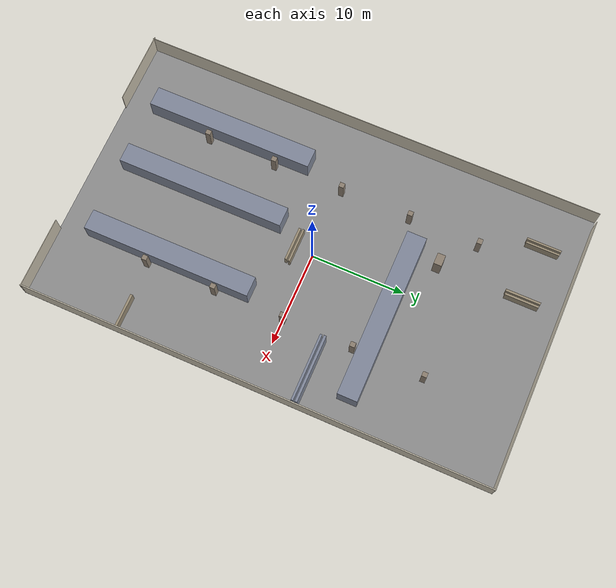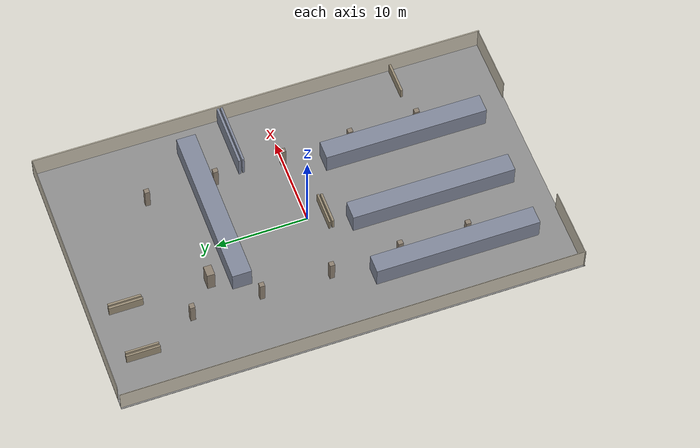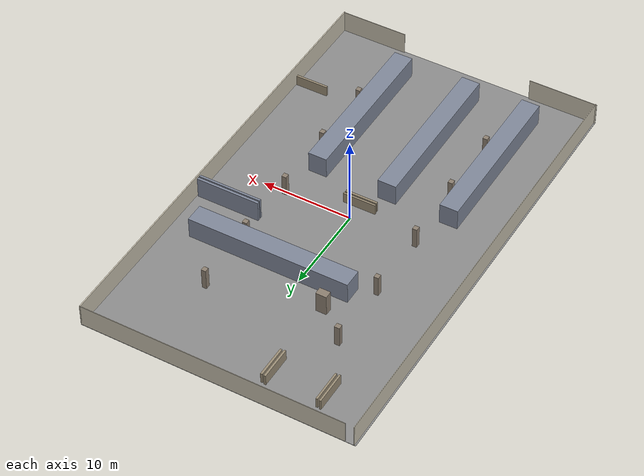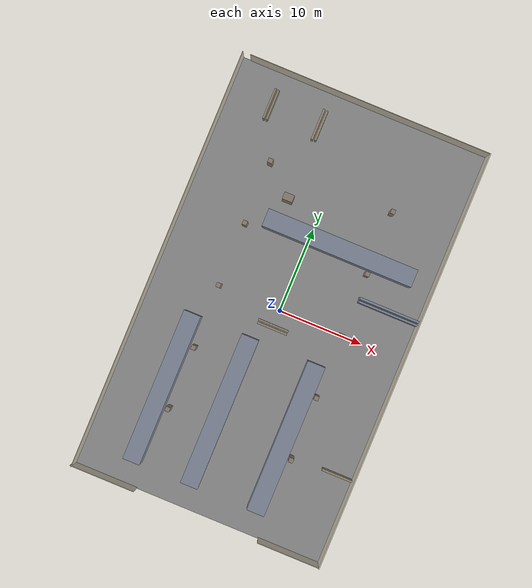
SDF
<?xml version="1.0"?>
<sdf version='1.7'>
  <world name='warehouse'>

    <physics name='default_physics' default='0' type='ode'>
      <max_step_size>0.002</max_step_size>
      <real_time_factor>1</real_time_factor>
      <real_time_update_rate>500</real_time_update_rate>
    </physics>

    <scene>
      <ambient>0.65 0.65 0.65 1</ambient>
      <background>0.7 0.8 0.9 1</background>
      <shadows>0</shadows>
    </scene>

    <light name='sun' type='directional'>
      <cast_shadows>0</cast_shadows>
      <pose>0 0 20 0 -0 0</pose>
      <diffuse>0.8 0.8 0.8 1</diffuse>
      <specular>0.2 0.2 0.2 1</specular>
      <direction>-0.5 0.1 -0.9</direction>
    </light>

    <model name='ground_plane'>
      <static>1</static>
      <pose>-0.010 0.110 -0.025 0 0 0</pose>
      <link name='link'>
        <collision name='collision'>
          <geometry><box><size>30.180 50.220 0.050</size></box></geometry>
        </collision>
        <visual name='visual'>
          <geometry><box><size>30.180 50.220 0.050</size></box></geometry>
          <material><ambient>0.45 0.45 0.45 1</ambient><diffuse>0.55 0.55 0.55 1</diffuse></material>
        </visual>
      </link>
    </model>
    <model name='wall_west'>
      <static>1</static>
      <pose>-14.920 0.110 1.250 0 0 0</pose>
      <link name='link'>
        <collision name='collision'>
          <geometry><box><size>0.060 50.220 2.500</size></box></geometry>
        </collision>
        <visual name='visual'>
          <geometry><box><size>0.060 50.220 2.500</size></box></geometry>
          <material><ambient>0.75 0.72 0.65 1</ambient><diffuse>0.78 0.75 0.68 1</diffuse></material>
        </visual>
      </link>
    </model>
    <model name='wall_east'>
      <static>1</static>
      <pose>15.020 0.110 1.250 0 0 0</pose>
      <link name='link'>
        <collision name='collision'>
          <geometry><box><size>0.120 50.220 2.500</size></box></geometry>
        </collision>
        <visual name='visual'>
          <geometry><box><size>0.120 50.220 2.500</size></box></geometry>
          <material><ambient>0.75 0.72 0.65 1</ambient><diffuse>0.78 0.75 0.68 1</diffuse></material>
        </visual>
      </link>
    </model>
    <model name='wall_north'>
      <static>1</static>
      <pose>0.545 25.190 1.250 0 0 0</pose>
      <link name='link'>
        <collision name='collision'>
          <geometry><box><size>29.070 0.060 2.500</size></box></geometry>
        </collision>
        <visual name='visual'>
          <geometry><box><size>29.070 0.060 2.500</size></box></geometry>
          <material><ambient>0.75 0.72 0.65 1</ambient><diffuse>0.78 0.75 0.68 1</diffuse></material>
        </visual>
      </link>
    </model>
    <model name='wall_south_w'>
      <static>1</static>
      <pose>-11.230 -24.895 1.250 0 0 0</pose>
      <link name='link'>
        <collision name='collision'>
          <geometry><box><size>7.740 0.060 2.500</size></box></geometry>
        </collision>
        <visual name='visual'>
          <geometry><box><size>7.740 0.060 2.500</size></box></geometry>
          <material><ambient>0.75 0.72 0.65 1</ambient><diffuse>0.78 0.75 0.68 1</diffuse></material>
        </visual>
      </link>
    </model>
    <model name='wall_south_e'>
      <static>1</static>
      <pose>11.315 -24.895 1.250 0 0 0</pose>
      <link name='link'>
        <collision name='collision'>
          <geometry><box><size>7.530 0.060 2.500</size></box></geometry>
        </collision>
        <visual name='visual'>
          <geometry><box><size>7.530 0.060 2.500</size></box></geometry>
          <material><ambient>0.75 0.72 0.65 1</ambient><diffuse>0.78 0.75 0.68 1</diffuse></material>
        </visual>
      </link>
    </model>
    <model name='shelf_01'>
      <static>1</static>
      <pose>3.500 9.080 1.200 0 0 0</pose>
      <link name='link'>
        <collision name='collision'>
          <geometry><box><size>18.060 2.100 2.400</size></box></geometry>
        </collision>
        <visual name='visual'>
          <geometry><box><size>18.060 2.100 2.400</size></box></geometry>
          <material><ambient>0.45 0.48 0.55 1</ambient><diffuse>0.50 0.53 0.60 1</diffuse></material>
        </visual>
      </link>
    </model>
    <model name='shelf_02'>
      <static>1</static>
      <pose>6.080 -12.940 1.200 0 0 0</pose>
      <link name='link'>
        <collision name='collision'>
          <geometry><box><size>2.100 18.000 2.400</size></box></geometry>
        </collision>
        <visual name='visual'>
          <geometry><box><size>2.100 18.000 2.400</size></box></geometry>
          <material><ambient>0.45 0.48 0.55 1</ambient><diffuse>0.50 0.53 0.60 1</diffuse></material>
        </visual>
      </link>
    </model>
    <model name='shelf_03'>
      <static>1</static>
      <pose>-1.945 -12.970 1.200 0 0 0</pose>
      <link name='link'>
        <collision name='collision'>
          <geometry><box><size>2.070 18.000 2.400</size></box></geometry>
        </collision>
        <visual name='visual'>
          <geometry><box><size>2.070 18.000 2.400</size></box></geometry>
          <material><ambient>0.45 0.48 0.55 1</ambient><diffuse>0.50 0.53 0.60 1</diffuse></material>
        </visual>
      </link>
    </model>
    <model name='shelf_04'>
      <static>1</static>
      <pose>-8.950 -12.955 1.200 0 0 0</pose>
      <link name='link'>
        <collision name='collision'>
          <geometry><box><size>2.040 17.970 2.400</size></box></geometry>
        </collision>
        <visual name='visual'>
          <geometry><box><size>2.040 17.970 2.400</size></box></geometry>
          <material><ambient>0.45 0.48 0.55 1</ambient><diffuse>0.50 0.53 0.60 1</diffuse></material>
        </visual>
      </link>
    </model>
    <model name='shelf_05'>
      <static>1</static>
      <pose>11.285 4.745 1.200 0 0 0</pose>
      <link name='link'>
        <collision name='collision'>
          <geometry><box><size>7.110 0.270 2.400</size></box></geometry>
        </collision>
        <visual name='visual'>
          <geometry><box><size>7.110 0.270 2.400</size></box></geometry>
          <material><ambient>0.45 0.48 0.55 1</ambient><diffuse>0.50 0.53 0.60 1</diffuse></material>
        </visual>
      </link>
    </model>
    <model name='shelf_06'>
      <static>1</static>
      <pose>11.300 4.340 1.200 0 0 0</pose>
      <link name='link'>
        <collision name='collision'>
          <geometry><box><size>7.080 0.240 2.400</size></box></geometry>
        </collision>
        <visual name='visual'>
          <geometry><box><size>7.080 0.240 2.400</size></box></geometry>
          <material><ambient>0.45 0.48 0.55 1</ambient><diffuse>0.50 0.53 0.60 1</diffuse></material>
        </visual>
      </link>
    </model>
    <model name='post_07'>
      <static>1</static>
      <pose>-4.000 12.110 1.200 0 0 0</pose>
      <link name='link'>
        <collision name='collision'>
          <geometry><box><size>1.200 0.840 2.400</size></box></geometry>
        </collision>
        <visual name='visual'>
          <geometry><box><size>1.200 0.840 2.400</size></box></geometry>
          <material><ambient>0.50 0.45 0.40 1</ambient><diffuse>0.55 0.50 0.44 1</diffuse></material>
        </visual>
      </link>
    </model>
    <model name='rail_08'>
      <static>1</static>
      <pose>-4.090 21.155 0.600 0 0 0</pose>
      <link name='link'>
        <collision name='collision'>
          <geometry><box><size>0.240 3.690 1.200</size></box></geometry>
        </collision>
        <visual name='visual'>
          <geometry><box><size>0.240 3.690 1.200</size></box></geometry>
          <material><ambient>0.55 0.50 0.42 1</ambient><diffuse>0.60 0.55 0.46 1</diffuse></material>
        </visual>
      </link>
    </model>
    <model name='rail_09'>
      <static>1</static>
      <pose>13.085 -14.740 0.600 0 0 0</pose>
      <link name='link'>
        <collision name='collision'>
          <geometry><box><size>3.630 0.240 1.200</size></box></geometry>
        </collision>
        <visual name='visual'>
          <geometry><box><size>3.630 0.240 1.200</size></box></geometry>
          <material><ambient>0.55 0.50 0.42 1</ambient><diffuse>0.60 0.55 0.46 1</diffuse></material>
        </visual>
      </link>
    </model>
    <model name='rail_10'>
      <static>1</static>
      <pose>-0.070 -2.170 0.600 0 0 0</pose>
      <link name='link'>
        <collision name='collision'>
          <geometry><box><size>3.600 0.240 1.200</size></box></geometry>
        </collision>
        <visual name='visual'>
          <geometry><box><size>3.600 0.240 1.200</size></box></geometry>
          <material><ambient>0.55 0.50 0.42 1</ambient><diffuse>0.60 0.55 0.46 1</diffuse></material>
        </visual>
      </link>
    </model>
    <model name='rail_11'>
      <static>1</static>
      <pose>-3.700 21.155 0.600 0 0 0</pose>
      <link name='link'>
        <collision name='collision'>
          <geometry><box><size>0.240 3.570 1.200</size></box></geometry>
        </collision>
        <visual name='visual'>
          <geometry><box><size>0.240 3.570 1.200</size></box></geometry>
          <material><ambient>0.55 0.50 0.42 1</ambient><diffuse>0.60 0.55 0.46 1</diffuse></material>
        </visual>
      </link>
    </model>
    <model name='rail_12'>
      <static>1</static>
      <pose>-0.055 -1.795 0.600 0 0 0</pose>
      <link name='link'>
        <collision name='collision'>
          <geometry><box><size>3.690 0.210 1.200</size></box></geometry>
        </collision>
        <visual name='visual'>
          <geometry><box><size>3.690 0.210 1.200</size></box></geometry>
          <material><ambient>0.55 0.50 0.42 1</ambient><diffuse>0.60 0.55 0.46 1</diffuse></material>
        </visual>
      </link>
    </model>
    <model name='rail_13'>
      <static>1</static>
      <pose>-10.075 21.230 0.600 0 0 0</pose>
      <link name='link'>
        <collision name='collision'>
          <geometry><box><size>0.210 3.660 1.200</size></box></geometry>
        </collision>
        <visual name='visual'>
          <geometry><box><size>0.210 3.660 1.200</size></box></geometry>
          <material><ambient>0.55 0.50 0.42 1</ambient><diffuse>0.60 0.55 0.46 1</diffuse></material>
        </visual>
      </link>
    </model>
    <model name='rail_14'>
      <static>1</static>
      <pose>-9.685 21.215 0.600 0 0 0</pose>
      <link name='link'>
        <collision name='collision'>
          <geometry><box><size>0.210 3.570 1.200</size></box></geometry>
        </collision>
        <visual name='visual'>
          <geometry><box><size>0.210 3.570 1.200</size></box></geometry>
          <material><ambient>0.55 0.50 0.42 1</ambient><diffuse>0.60 0.55 0.46 1</diffuse></material>
        </visual>
      </link>
    </model>
    <model name='post_15'>
      <static>1</static>
      <pose>-7.405 15.110 1.200 0 0 0</pose>
      <link name='link'>
        <collision name='collision'>
          <geometry><box><size>0.570 0.540 2.400</size></box></geometry>
        </collision>
        <visual name='visual'>
          <geometry><box><size>0.570 0.540 2.400</size></box></geometry>
          <material><ambient>0.50 0.45 0.40 1</ambient><diffuse>0.55 0.50 0.44 1</diffuse></material>
        </visual>
      </link>
    </model>
    <model name='post_16'>
      <static>1</static>
      <pose>7.445 15.080 1.200 0 0 0</pose>
      <link name='link'>
        <collision name='collision'>
          <geometry><box><size>0.510 0.540 2.400</size></box></geometry>
        </collision>
        <visual name='visual'>
          <geometry><box><size>0.510 0.540 2.400</size></box></geometry>
          <material><ambient>0.50 0.45 0.40 1</ambient><diffuse>0.55 0.50 0.44 1</diffuse></material>
        </visual>
      </link>
    </model>
    <model name='post_17'>
      <static>1</static>
      <pose>-7.405 7.610 1.200 0 0 0</pose>
      <link name='link'>
        <collision name='collision'>
          <geometry><box><size>0.510 0.540 2.400</size></box></geometry>
        </collision>
        <visual name='visual'>
          <geometry><box><size>0.510 0.540 2.400</size></box></geometry>
          <material><ambient>0.50 0.45 0.40 1</ambient><diffuse>0.55 0.50 0.44 1</diffuse></material>
        </visual>
      </link>
    </model>
    <model name='post_18'>
      <static>1</static>
      <pose>7.475 7.550 1.200 0 0 0</pose>
      <link name='link'>
        <collision name='collision'>
          <geometry><box><size>0.510 0.540 2.400</size></box></geometry>
        </collision>
        <visual name='visual'>
          <geometry><box><size>0.510 0.540 2.400</size></box></geometry>
          <material><ambient>0.50 0.45 0.40 1</ambient><diffuse>0.55 0.50 0.44 1</diffuse></material>
        </visual>
      </link>
    </model>
    <model name='post_19'>
      <static>1</static>
      <pose>-7.465 0.050 1.200 0 0 0</pose>
      <link name='link'>
        <collision name='collision'>
          <geometry><box><size>0.510 0.540 2.400</size></box></geometry>
        </collision>
        <visual name='visual'>
          <geometry><box><size>0.510 0.540 2.400</size></box></geometry>
          <material><ambient>0.50 0.45 0.40 1</ambient><diffuse>0.55 0.50 0.44 1</diffuse></material>
        </visual>
      </link>
    </model>
    <model name='post_20'>
      <static>1</static>
      <pose>7.475 0.050 1.200 0 0 0</pose>
      <link name='link'>
        <collision name='collision'>
          <geometry><box><size>0.510 0.540 2.400</size></box></geometry>
        </collision>
        <visual name='visual'>
          <geometry><box><size>0.510 0.540 2.400</size></box></geometry>
          <material><ambient>0.50 0.45 0.40 1</ambient><diffuse>0.55 0.50 0.44 1</diffuse></material>
        </visual>
      </link>
    </model>
    <model name='post_21'>
      <static>1</static>
      <pose>7.505 -7.450 1.200 0 0 0</pose>
      <link name='link'>
        <collision name='collision'>
          <geometry><box><size>0.510 0.540 2.400</size></box></geometry>
        </collision>
        <visual name='visual'>
          <geometry><box><size>0.510 0.540 2.400</size></box></geometry>
          <material><ambient>0.50 0.45 0.40 1</ambient><diffuse>0.55 0.50 0.44 1</diffuse></material>
        </visual>
      </link>
    </model>
    <model name='post_22'>
      <static>1</static>
      <pose>-7.375 -7.480 1.200 0 0 0</pose>
      <link name='link'>
        <collision name='collision'>
          <geometry><box><size>0.510 0.540 2.400</size></box></geometry>
        </collision>
        <visual name='visual'>
          <geometry><box><size>0.510 0.540 2.400</size></box></geometry>
          <material><ambient>0.50 0.45 0.40 1</ambient><diffuse>0.55 0.50 0.44 1</diffuse></material>
        </visual>
      </link>
    </model>
    <model name='post_23'>
      <static>1</static>
      <pose>-7.405 -14.950 1.200 0 0 0</pose>
      <link name='link'>
        <collision name='collision'>
          <geometry><box><size>0.510 0.540 2.400</size></box></geometry>
        </collision>
        <visual name='visual'>
          <geometry><box><size>0.510 0.540 2.400</size></box></geometry>
          <material><ambient>0.50 0.45 0.40 1</ambient><diffuse>0.55 0.50 0.44 1</diffuse></material>
        </visual>
      </link>
    </model>
    <model name='post_24'>
      <static>1</static>
      <pose>7.535 -14.950 1.200 0 0 0</pose>
      <link name='link'>
        <collision name='collision'>
          <geometry><box><size>0.510 0.540 2.400</size></box></geometry>
        </collision>
        <visual name='visual'>
          <geometry><box><size>0.510 0.540 2.400</size></box></geometry>
          <material><ambient>0.50 0.45 0.40 1</ambient><diffuse>0.55 0.50 0.44 1</diffuse></material>
        </visual>
      </link>
    </model>
  </world>
</sdf>
